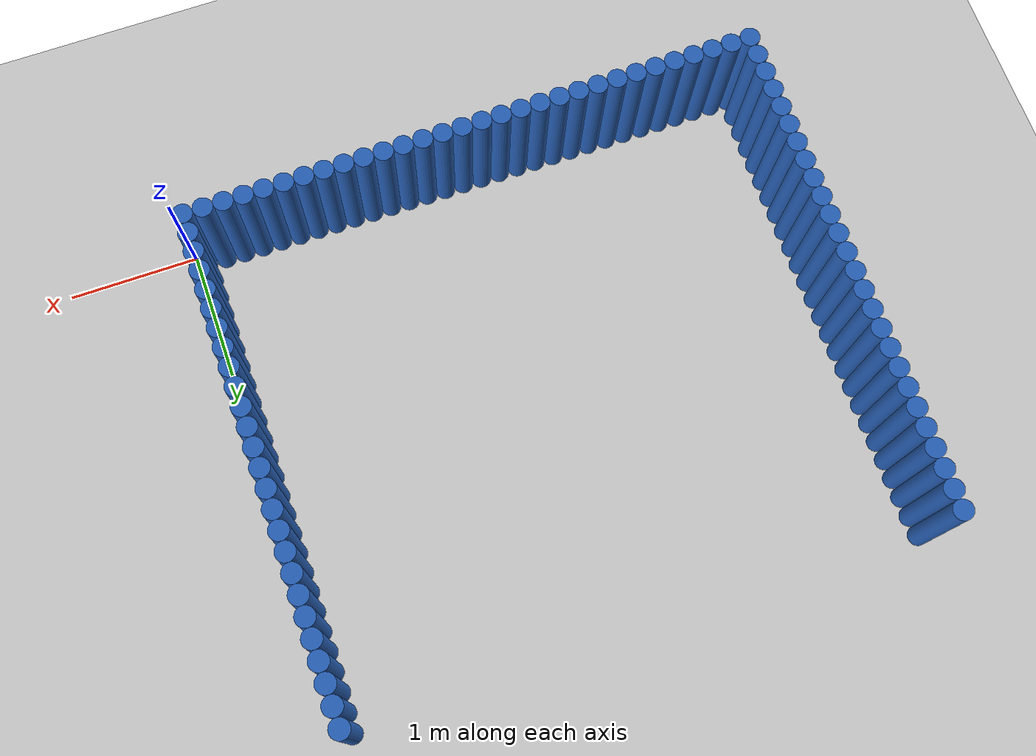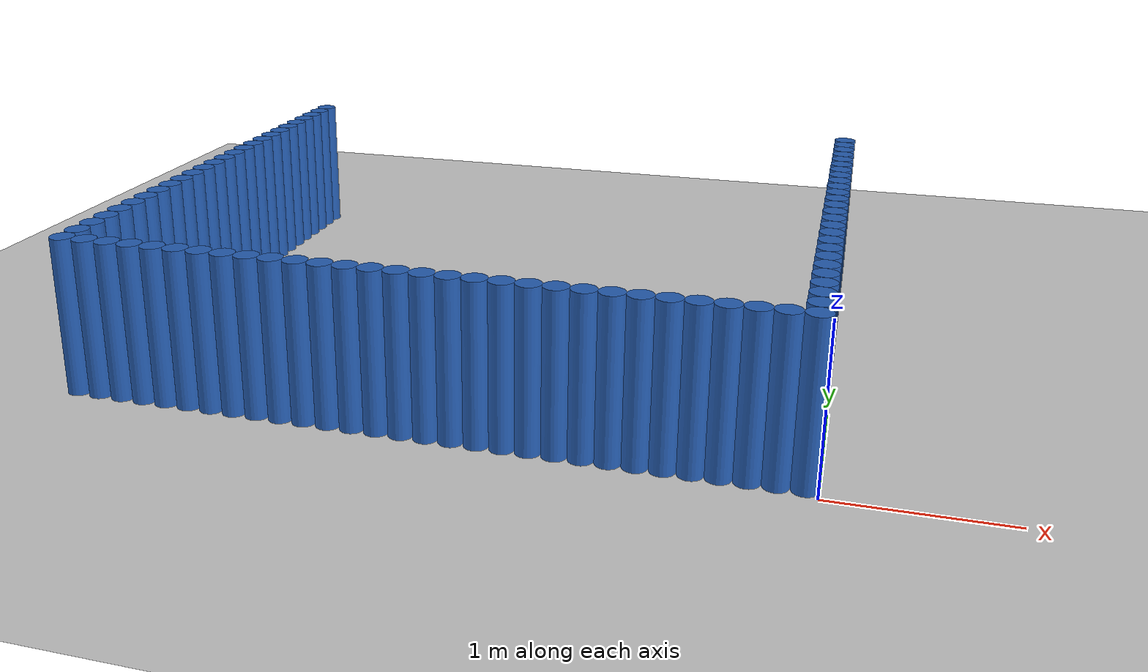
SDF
<sdf version="1.6">
 <world name="barn_world">
  <model name="ground_plane">
   <static>1</static>
   <link name="link">
    <collision name="collision">
     <geometry><plane><normal>0 0 1</normal><size>100 100</size></plane></geometry>
    </collision>
    <visual name="visual">
     <geometry><plane><normal>0 0 1</normal><size>100 100</size></plane></geometry>
     <material>
      <script><uri>file://media/materials/scripts/gazebo.material</uri><name>Gazebo/Grey</name></script>
     </material>
    </visual>
   </link>
  </model>
  <model name="unit_cylinder_0">
   <static>1</static>
   <pose>-0.0750 0.0750 0.5 0 0 0</pose>
   <link name="link">
    <collision name="collision">
     <geometry><cylinder><radius>0.075</radius><length>1</length></cylinder></geometry>
    </collision>
    <visual name="visual">
     <geometry><cylinder><radius>0.075</radius><length>1</length></cylinder></geometry>
     <material><ambient>0.152 0.379 0.72 1</ambient><diffuse>0.152 0.379 0.72 1</diffuse></material>
    </visual>
   </link>
  </model>
  <model name="unit_cylinder_1">
   <static>1</static>
   <pose>-0.2250 0.0750 0.5 0 0 0</pose>
   <link name="link">
    <collision name="collision">
     <geometry><cylinder><radius>0.075</radius><length>1</length></cylinder></geometry>
    </collision>
    <visual name="visual">
     <geometry><cylinder><radius>0.075</radius><length>1</length></cylinder></geometry>
     <material><ambient>0.152 0.379 0.72 1</ambient><diffuse>0.152 0.379 0.72 1</diffuse></material>
    </visual>
   </link>
  </model>
  <model name="unit_cylinder_2">
   <static>1</static>
   <pose>-0.3750 0.0750 0.5 0 0 0</pose>
   <link name="link">
    <collision name="collision">
     <geometry><cylinder><radius>0.075</radius><length>1</length></cylinder></geometry>
    </collision>
    <visual name="visual">
     <geometry><cylinder><radius>0.075</radius><length>1</length></cylinder></geometry>
     <material><ambient>0.152 0.379 0.72 1</ambient><diffuse>0.152 0.379 0.72 1</diffuse></material>
    </visual>
   </link>
  </model>
  <model name="unit_cylinder_3">
   <static>1</static>
   <pose>-0.5250 0.0750 0.5 0 0 0</pose>
   <link name="link">
    <collision name="collision">
     <geometry><cylinder><radius>0.075</radius><length>1</length></cylinder></geometry>
    </collision>
    <visual name="visual">
     <geometry><cylinder><radius>0.075</radius><length>1</length></cylinder></geometry>
     <material><ambient>0.152 0.379 0.72 1</ambient><diffuse>0.152 0.379 0.72 1</diffuse></material>
    </visual>
   </link>
  </model>
  <model name="unit_cylinder_4">
   <static>1</static>
   <pose>-0.6750 0.0750 0.5 0 0 0</pose>
   <link name="link">
    <collision name="collision">
     <geometry><cylinder><radius>0.075</radius><length>1</length></cylinder></geometry>
    </collision>
    <visual name="visual">
     <geometry><cylinder><radius>0.075</radius><length>1</length></cylinder></geometry>
     <material><ambient>0.152 0.379 0.72 1</ambient><diffuse>0.152 0.379 0.72 1</diffuse></material>
    </visual>
   </link>
  </model>
  <model name="unit_cylinder_5">
   <static>1</static>
   <pose>-0.8250 0.0750 0.5 0 0 0</pose>
   <link name="link">
    <collision name="collision">
     <geometry><cylinder><radius>0.075</radius><length>1</length></cylinder></geometry>
    </collision>
    <visual name="visual">
     <geometry><cylinder><radius>0.075</radius><length>1</length></cylinder></geometry>
     <material><ambient>0.152 0.379 0.72 1</ambient><diffuse>0.152 0.379 0.72 1</diffuse></material>
    </visual>
   </link>
  </model>
  <model name="unit_cylinder_6">
   <static>1</static>
   <pose>-0.9750 0.0750 0.5 0 0 0</pose>
   <link name="link">
    <collision name="collision">
     <geometry><cylinder><radius>0.075</radius><length>1</length></cylinder></geometry>
    </collision>
    <visual name="visual">
     <geometry><cylinder><radius>0.075</radius><length>1</length></cylinder></geometry>
     <material><ambient>0.152 0.379 0.72 1</ambient><diffuse>0.152 0.379 0.72 1</diffuse></material>
    </visual>
   </link>
  </model>
  <model name="unit_cylinder_7">
   <static>1</static>
   <pose>-1.1250 0.0750 0.5 0 0 0</pose>
   <link name="link">
    <collision name="collision">
     <geometry><cylinder><radius>0.075</radius><length>1</length></cylinder></geometry>
    </collision>
    <visual name="visual">
     <geometry><cylinder><radius>0.075</radius><length>1</length></cylinder></geometry>
     <material><ambient>0.152 0.379 0.72 1</ambient><diffuse>0.152 0.379 0.72 1</diffuse></material>
    </visual>
   </link>
  </model>
  <model name="unit_cylinder_8">
   <static>1</static>
   <pose>-1.2750 0.0750 0.5 0 0 0</pose>
   <link name="link">
    <collision name="collision">
     <geometry><cylinder><radius>0.075</radius><length>1</length></cylinder></geometry>
    </collision>
    <visual name="visual">
     <geometry><cylinder><radius>0.075</radius><length>1</length></cylinder></geometry>
     <material><ambient>0.152 0.379 0.72 1</ambient><diffuse>0.152 0.379 0.72 1</diffuse></material>
    </visual>
   </link>
  </model>
  <model name="unit_cylinder_9">
   <static>1</static>
   <pose>-1.4250 0.0750 0.5 0 0 0</pose>
   <link name="link">
    <collision name="collision">
     <geometry><cylinder><radius>0.075</radius><length>1</length></cylinder></geometry>
    </collision>
    <visual name="visual">
     <geometry><cylinder><radius>0.075</radius><length>1</length></cylinder></geometry>
     <material><ambient>0.152 0.379 0.72 1</ambient><diffuse>0.152 0.379 0.72 1</diffuse></material>
    </visual>
   </link>
  </model>
  <model name="unit_cylinder_10">
   <static>1</static>
   <pose>-1.5750 0.0750 0.5 0 0 0</pose>
   <link name="link">
    <collision name="collision">
     <geometry><cylinder><radius>0.075</radius><length>1</length></cylinder></geometry>
    </collision>
    <visual name="visual">
     <geometry><cylinder><radius>0.075</radius><length>1</length></cylinder></geometry>
     <material><ambient>0.152 0.379 0.72 1</ambient><diffuse>0.152 0.379 0.72 1</diffuse></material>
    </visual>
   </link>
  </model>
  <model name="unit_cylinder_11">
   <static>1</static>
   <pose>-1.7250 0.0750 0.5 0 0 0</pose>
   <link name="link">
    <collision name="collision">
     <geometry><cylinder><radius>0.075</radius><length>1</length></cylinder></geometry>
    </collision>
    <visual name="visual">
     <geometry><cylinder><radius>0.075</radius><length>1</length></cylinder></geometry>
     <material><ambient>0.152 0.379 0.72 1</ambient><diffuse>0.152 0.379 0.72 1</diffuse></material>
    </visual>
   </link>
  </model>
  <model name="unit_cylinder_12">
   <static>1</static>
   <pose>-1.8750 0.0750 0.5 0 0 0</pose>
   <link name="link">
    <collision name="collision">
     <geometry><cylinder><radius>0.075</radius><length>1</length></cylinder></geometry>
    </collision>
    <visual name="visual">
     <geometry><cylinder><radius>0.075</radius><length>1</length></cylinder></geometry>
     <material><ambient>0.152 0.379 0.72 1</ambient><diffuse>0.152 0.379 0.72 1</diffuse></material>
    </visual>
   </link>
  </model>
  <model name="unit_cylinder_13">
   <static>1</static>
   <pose>-2.0250 0.0750 0.5 0 0 0</pose>
   <link name="link">
    <collision name="collision">
     <geometry><cylinder><radius>0.075</radius><length>1</length></cylinder></geometry>
    </collision>
    <visual name="visual">
     <geometry><cylinder><radius>0.075</radius><length>1</length></cylinder></geometry>
     <material><ambient>0.152 0.379 0.72 1</ambient><diffuse>0.152 0.379 0.72 1</diffuse></material>
    </visual>
   </link>
  </model>
  <model name="unit_cylinder_14">
   <static>1</static>
   <pose>-2.1750 0.0750 0.5 0 0 0</pose>
   <link name="link">
    <collision name="collision">
     <geometry><cylinder><radius>0.075</radius><length>1</length></cylinder></geometry>
    </collision>
    <visual name="visual">
     <geometry><cylinder><radius>0.075</radius><length>1</length></cylinder></geometry>
     <material><ambient>0.152 0.379 0.72 1</ambient><diffuse>0.152 0.379 0.72 1</diffuse></material>
    </visual>
   </link>
  </model>
  <model name="unit_cylinder_15">
   <static>1</static>
   <pose>-2.3250 0.0750 0.5 0 0 0</pose>
   <link name="link">
    <collision name="collision">
     <geometry><cylinder><radius>0.075</radius><length>1</length></cylinder></geometry>
    </collision>
    <visual name="visual">
     <geometry><cylinder><radius>0.075</radius><length>1</length></cylinder></geometry>
     <material><ambient>0.152 0.379 0.72 1</ambient><diffuse>0.152 0.379 0.72 1</diffuse></material>
    </visual>
   </link>
  </model>
  <model name="unit_cylinder_16">
   <static>1</static>
   <pose>-2.4750 0.0750 0.5 0 0 0</pose>
   <link name="link">
    <collision name="collision">
     <geometry><cylinder><radius>0.075</radius><length>1</length></cylinder></geometry>
    </collision>
    <visual name="visual">
     <geometry><cylinder><radius>0.075</radius><length>1</length></cylinder></geometry>
     <material><ambient>0.152 0.379 0.72 1</ambient><diffuse>0.152 0.379 0.72 1</diffuse></material>
    </visual>
   </link>
  </model>
  <model name="unit_cylinder_17">
   <static>1</static>
   <pose>-2.6250 0.0750 0.5 0 0 0</pose>
   <link name="link">
    <collision name="collision">
     <geometry><cylinder><radius>0.075</radius><length>1</length></cylinder></geometry>
    </collision>
    <visual name="visual">
     <geometry><cylinder><radius>0.075</radius><length>1</length></cylinder></geometry>
     <material><ambient>0.152 0.379 0.72 1</ambient><diffuse>0.152 0.379 0.72 1</diffuse></material>
    </visual>
   </link>
  </model>
  <model name="unit_cylinder_18">
   <static>1</static>
   <pose>-2.7750 0.0750 0.5 0 0 0</pose>
   <link name="link">
    <collision name="collision">
     <geometry><cylinder><radius>0.075</radius><length>1</length></cylinder></geometry>
    </collision>
    <visual name="visual">
     <geometry><cylinder><radius>0.075</radius><length>1</length></cylinder></geometry>
     <material><ambient>0.152 0.379 0.72 1</ambient><diffuse>0.152 0.379 0.72 1</diffuse></material>
    </visual>
   </link>
  </model>
  <model name="unit_cylinder_19">
   <static>1</static>
   <pose>-2.9250 0.0750 0.5 0 0 0</pose>
   <link name="link">
    <collision name="collision">
     <geometry><cylinder><radius>0.075</radius><length>1</length></cylinder></geometry>
    </collision>
    <visual name="visual">
     <geometry><cylinder><radius>0.075</radius><length>1</length></cylinder></geometry>
     <material><ambient>0.152 0.379 0.72 1</ambient><diffuse>0.152 0.379 0.72 1</diffuse></material>
    </visual>
   </link>
  </model>
  <model name="unit_cylinder_20">
   <static>1</static>
   <pose>-3.0750 0.0750 0.5 0 0 0</pose>
   <link name="link">
    <collision name="collision">
     <geometry><cylinder><radius>0.075</radius><length>1</length></cylinder></geometry>
    </collision>
    <visual name="visual">
     <geometry><cylinder><radius>0.075</radius><length>1</length></cylinder></geometry>
     <material><ambient>0.152 0.379 0.72 1</ambient><diffuse>0.152 0.379 0.72 1</diffuse></material>
    </visual>
   </link>
  </model>
  <model name="unit_cylinder_21">
   <static>1</static>
   <pose>-3.2250 0.0750 0.5 0 0 0</pose>
   <link name="link">
    <collision name="collision">
     <geometry><cylinder><radius>0.075</radius><length>1</length></cylinder></geometry>
    </collision>
    <visual name="visual">
     <geometry><cylinder><radius>0.075</radius><length>1</length></cylinder></geometry>
     <material><ambient>0.152 0.379 0.72 1</ambient><diffuse>0.152 0.379 0.72 1</diffuse></material>
    </visual>
   </link>
  </model>
  <model name="unit_cylinder_22">
   <static>1</static>
   <pose>-3.3750 0.0750 0.5 0 0 0</pose>
   <link name="link">
    <collision name="collision">
     <geometry><cylinder><radius>0.075</radius><length>1</length></cylinder></geometry>
    </collision>
    <visual name="visual">
     <geometry><cylinder><radius>0.075</radius><length>1</length></cylinder></geometry>
     <material><ambient>0.152 0.379 0.72 1</ambient><diffuse>0.152 0.379 0.72 1</diffuse></material>
    </visual>
   </link>
  </model>
  <model name="unit_cylinder_23">
   <static>1</static>
   <pose>-3.5250 0.0750 0.5 0 0 0</pose>
   <link name="link">
    <collision name="collision">
     <geometry><cylinder><radius>0.075</radius><length>1</length></cylinder></geometry>
    </collision>
    <visual name="visual">
     <geometry><cylinder><radius>0.075</radius><length>1</length></cylinder></geometry>
     <material><ambient>0.152 0.379 0.72 1</ambient><diffuse>0.152 0.379 0.72 1</diffuse></material>
    </visual>
   </link>
  </model>
  <model name="unit_cylinder_24">
   <static>1</static>
   <pose>-3.6750 0.0750 0.5 0 0 0</pose>
   <link name="link">
    <collision name="collision">
     <geometry><cylinder><radius>0.075</radius><length>1</length></cylinder></geometry>
    </collision>
    <visual name="visual">
     <geometry><cylinder><radius>0.075</radius><length>1</length></cylinder></geometry>
     <material><ambient>0.152 0.379 0.72 1</ambient><diffuse>0.152 0.379 0.72 1</diffuse></material>
    </visual>
   </link>
  </model>
  <model name="unit_cylinder_25">
   <static>1</static>
   <pose>-3.8250 0.0750 0.5 0 0 0</pose>
   <link name="link">
    <collision name="collision">
     <geometry><cylinder><radius>0.075</radius><length>1</length></cylinder></geometry>
    </collision>
    <visual name="visual">
     <geometry><cylinder><radius>0.075</radius><length>1</length></cylinder></geometry>
     <material><ambient>0.152 0.379 0.72 1</ambient><diffuse>0.152 0.379 0.72 1</diffuse></material>
    </visual>
   </link>
  </model>
  <model name="unit_cylinder_26">
   <static>1</static>
   <pose>-3.9750 0.0750 0.5 0 0 0</pose>
   <link name="link">
    <collision name="collision">
     <geometry><cylinder><radius>0.075</radius><length>1</length></cylinder></geometry>
    </collision>
    <visual name="visual">
     <geometry><cylinder><radius>0.075</radius><length>1</length></cylinder></geometry>
     <material><ambient>0.152 0.379 0.72 1</ambient><diffuse>0.152 0.379 0.72 1</diffuse></material>
    </visual>
   </link>
  </model>
  <model name="unit_cylinder_27">
   <static>1</static>
   <pose>-4.1250 0.0750 0.5 0 0 0</pose>
   <link name="link">
    <collision name="collision">
     <geometry><cylinder><radius>0.075</radius><length>1</length></cylinder></geometry>
    </collision>
    <visual name="visual">
     <geometry><cylinder><radius>0.075</radius><length>1</length></cylinder></geometry>
     <material><ambient>0.152 0.379 0.72 1</ambient><diffuse>0.152 0.379 0.72 1</diffuse></material>
    </visual>
   </link>
  </model>
  <model name="unit_cylinder_28">
   <static>1</static>
   <pose>-4.2750 0.0750 0.5 0 0 0</pose>
   <link name="link">
    <collision name="collision">
     <geometry><cylinder><radius>0.075</radius><length>1</length></cylinder></geometry>
    </collision>
    <visual name="visual">
     <geometry><cylinder><radius>0.075</radius><length>1</length></cylinder></geometry>
     <material><ambient>0.152 0.379 0.72 1</ambient><diffuse>0.152 0.379 0.72 1</diffuse></material>
    </visual>
   </link>
  </model>
  <model name="unit_cylinder_29">
   <static>1</static>
   <pose>-4.4250 0.0750 0.5 0 0 0</pose>
   <link name="link">
    <collision name="collision">
     <geometry><cylinder><radius>0.075</radius><length>1</length></cylinder></geometry>
    </collision>
    <visual name="visual">
     <geometry><cylinder><radius>0.075</radius><length>1</length></cylinder></geometry>
     <material><ambient>0.152 0.379 0.72 1</ambient><diffuse>0.152 0.379 0.72 1</diffuse></material>
    </visual>
   </link>
  </model>
  <model name="unit_cylinder_30">
   <static>1</static>
   <pose>-0.0750 0.2250 0.5 0 0 0</pose>
   <link name="link">
    <collision name="collision">
     <geometry><cylinder><radius>0.075</radius><length>1</length></cylinder></geometry>
    </collision>
    <visual name="visual">
     <geometry><cylinder><radius>0.075</radius><length>1</length></cylinder></geometry>
     <material><ambient>0.152 0.379 0.72 1</ambient><diffuse>0.152 0.379 0.72 1</diffuse></material>
    </visual>
   </link>
  </model>
  <model name="unit_cylinder_31">
   <static>1</static>
   <pose>-4.4250 0.2250 0.5 0 0 0</pose>
   <link name="link">
    <collision name="collision">
     <geometry><cylinder><radius>0.075</radius><length>1</length></cylinder></geometry>
    </collision>
    <visual name="visual">
     <geometry><cylinder><radius>0.075</radius><length>1</length></cylinder></geometry>
     <material><ambient>0.152 0.379 0.72 1</ambient><diffuse>0.152 0.379 0.72 1</diffuse></material>
    </visual>
   </link>
  </model>
  <model name="unit_cylinder_32">
   <static>1</static>
   <pose>-0.0750 0.3750 0.5 0 0 0</pose>
   <link name="link">
    <collision name="collision">
     <geometry><cylinder><radius>0.075</radius><length>1</length></cylinder></geometry>
    </collision>
    <visual name="visual">
     <geometry><cylinder><radius>0.075</radius><length>1</length></cylinder></geometry>
     <material><ambient>0.152 0.379 0.72 1</ambient><diffuse>0.152 0.379 0.72 1</diffuse></material>
    </visual>
   </link>
  </model>
  <model name="unit_cylinder_33">
   <static>1</static>
   <pose>-4.4250 0.3750 0.5 0 0 0</pose>
   <link name="link">
    <collision name="collision">
     <geometry><cylinder><radius>0.075</radius><length>1</length></cylinder></geometry>
    </collision>
    <visual name="visual">
     <geometry><cylinder><radius>0.075</radius><length>1</length></cylinder></geometry>
     <material><ambient>0.152 0.379 0.72 1</ambient><diffuse>0.152 0.379 0.72 1</diffuse></material>
    </visual>
   </link>
  </model>
  <model name="unit_cylinder_34">
   <static>1</static>
   <pose>-0.0750 0.5250 0.5 0 0 0</pose>
   <link name="link">
    <collision name="collision">
     <geometry><cylinder><radius>0.075</radius><length>1</length></cylinder></geometry>
    </collision>
    <visual name="visual">
     <geometry><cylinder><radius>0.075</radius><length>1</length></cylinder></geometry>
     <material><ambient>0.152 0.379 0.72 1</ambient><diffuse>0.152 0.379 0.72 1</diffuse></material>
    </visual>
   </link>
  </model>
  <model name="unit_cylinder_35">
   <static>1</static>
   <pose>-4.4250 0.5250 0.5 0 0 0</pose>
   <link name="link">
    <collision name="collision">
     <geometry><cylinder><radius>0.075</radius><length>1</length></cylinder></geometry>
    </collision>
    <visual name="visual">
     <geometry><cylinder><radius>0.075</radius><length>1</length></cylinder></geometry>
     <material><ambient>0.152 0.379 0.72 1</ambient><diffuse>0.152 0.379 0.72 1</diffuse></material>
    </visual>
   </link>
  </model>
  <model name="unit_cylinder_36">
   <static>1</static>
   <pose>-0.0750 0.6750 0.5 0 0 0</pose>
   <link name="link">
    <collision name="collision">
     <geometry><cylinder><radius>0.075</radius><length>1</length></cylinder></geometry>
    </collision>
    <visual name="visual">
     <geometry><cylinder><radius>0.075</radius><length>1</length></cylinder></geometry>
     <material><ambient>0.152 0.379 0.72 1</ambient><diffuse>0.152 0.379 0.72 1</diffuse></material>
    </visual>
   </link>
  </model>
  <model name="unit_cylinder_37">
   <static>1</static>
   <pose>-4.4250 0.6750 0.5 0 0 0</pose>
   <link name="link">
    <collision name="collision">
     <geometry><cylinder><radius>0.075</radius><length>1</length></cylinder></geometry>
    </collision>
    <visual name="visual">
     <geometry><cylinder><radius>0.075</radius><length>1</length></cylinder></geometry>
     <material><ambient>0.152 0.379 0.72 1</ambient><diffuse>0.152 0.379 0.72 1</diffuse></material>
    </visual>
   </link>
  </model>
  <model name="unit_cylinder_38">
   <static>1</static>
   <pose>-0.0750 0.8250 0.5 0 0 0</pose>
   <link name="link">
    <collision name="collision">
     <geometry><cylinder><radius>0.075</radius><length>1</length></cylinder></geometry>
    </collision>
    <visual name="visual">
     <geometry><cylinder><radius>0.075</radius><length>1</length></cylinder></geometry>
     <material><ambient>0.152 0.379 0.72 1</ambient><diffuse>0.152 0.379 0.72 1</diffuse></material>
    </visual>
   </link>
  </model>
  <model name="unit_cylinder_39">
   <static>1</static>
   <pose>-4.4250 0.8250 0.5 0 0 0</pose>
   <link name="link">
    <collision name="collision">
     <geometry><cylinder><radius>0.075</radius><length>1</length></cylinder></geometry>
    </collision>
    <visual name="visual">
     <geometry><cylinder><radius>0.075</radius><length>1</length></cylinder></geometry>
     <material><ambient>0.152 0.379 0.72 1</ambient><diffuse>0.152 0.379 0.72 1</diffuse></material>
    </visual>
   </link>
  </model>
  <model name="unit_cylinder_40">
   <static>1</static>
   <pose>-0.0750 0.9750 0.5 0 0 0</pose>
   <link name="link">
    <collision name="collision">
     <geometry><cylinder><radius>0.075</radius><length>1</length></cylinder></geometry>
    </collision>
    <visual name="visual">
     <geometry><cylinder><radius>0.075</radius><length>1</length></cylinder></geometry>
     <material><ambient>0.152 0.379 0.72 1</ambient><diffuse>0.152 0.379 0.72 1</diffuse></material>
    </visual>
   </link>
  </model>
  <model name="unit_cylinder_41">
   <static>1</static>
   <pose>-4.4250 0.9750 0.5 0 0 0</pose>
   <link name="link">
    <collision name="collision">
     <geometry><cylinder><radius>0.075</radius><length>1</length></cylinder></geometry>
    </collision>
    <visual name="visual">
     <geometry><cylinder><radius>0.075</radius><length>1</length></cylinder></geometry>
     <material><ambient>0.152 0.379 0.72 1</ambient><diffuse>0.152 0.379 0.72 1</diffuse></material>
    </visual>
   </link>
  </model>
  <model name="unit_cylinder_42">
   <static>1</static>
   <pose>-0.0750 1.1250 0.5 0 0 0</pose>
   <link name="link">
    <collision name="collision">
     <geometry><cylinder><radius>0.075</radius><length>1</length></cylinder></geometry>
    </collision>
    <visual name="visual">
     <geometry><cylinder><radius>0.075</radius><length>1</length></cylinder></geometry>
     <material><ambient>0.152 0.379 0.72 1</ambient><diffuse>0.152 0.379 0.72 1</diffuse></material>
    </visual>
   </link>
  </model>
  <model name="unit_cylinder_43">
   <static>1</static>
   <pose>-4.4250 1.1250 0.5 0 0 0</pose>
   <link name="link">
    <collision name="collision">
     <geometry><cylinder><radius>0.075</radius><length>1</length></cylinder></geometry>
    </collision>
    <visual name="visual">
     <geometry><cylinder><radius>0.075</radius><length>1</length></cylinder></geometry>
     <material><ambient>0.152 0.379 0.72 1</ambient><diffuse>0.152 0.379 0.72 1</diffuse></material>
    </visual>
   </link>
  </model>
  <model name="unit_cylinder_44">
   <static>1</static>
   <pose>-0.0750 1.2750 0.5 0 0 0</pose>
   <link name="link">
    <collision name="collision">
     <geometry><cylinder><radius>0.075</radius><length>1</length></cylinder></geometry>
    </collision>
    <visual name="visual">
     <geometry><cylinder><radius>0.075</radius><length>1</length></cylinder></geometry>
     <material><ambient>0.152 0.379 0.72 1</ambient><diffuse>0.152 0.379 0.72 1</diffuse></material>
    </visual>
   </link>
  </model>
  <model name="unit_cylinder_45">
   <static>1</static>
   <pose>-4.4250 1.2750 0.5 0 0 0</pose>
   <link name="link">
    <collision name="collision">
     <geometry><cylinder><radius>0.075</radius><length>1</length></cylinder></geometry>
    </collision>
    <visual name="visual">
     <geometry><cylinder><radius>0.075</radius><length>1</length></cylinder></geometry>
     <material><ambient>0.152 0.379 0.72 1</ambient><diffuse>0.152 0.379 0.72 1</diffuse></material>
    </visual>
   </link>
  </model>
  <model name="unit_cylinder_46">
   <static>1</static>
   <pose>-0.0750 1.4250 0.5 0 0 0</pose>
   <link name="link">
    <collision name="collision">
     <geometry><cylinder><radius>0.075</radius><length>1</length></cylinder></geometry>
    </collision>
    <visual name="visual">
     <geometry><cylinder><radius>0.075</radius><length>1</length></cylinder></geometry>
     <material><ambient>0.152 0.379 0.72 1</ambient><diffuse>0.152 0.379 0.72 1</diffuse></material>
    </visual>
   </link>
  </model>
  <model name="unit_cylinder_47">
   <static>1</static>
   <pose>-4.4250 1.4250 0.5 0 0 0</pose>
   <link name="link">
    <collision name="collision">
     <geometry><cylinder><radius>0.075</radius><length>1</length></cylinder></geometry>
    </collision>
    <visual name="visual">
     <geometry><cylinder><radius>0.075</radius><length>1</length></cylinder></geometry>
     <material><ambient>0.152 0.379 0.72 1</ambient><diffuse>0.152 0.379 0.72 1</diffuse></material>
    </visual>
   </link>
  </model>
  <model name="unit_cylinder_48">
   <static>1</static>
   <pose>-0.0750 1.5750 0.5 0 0 0</pose>
   <link name="link">
    <collision name="collision">
     <geometry><cylinder><radius>0.075</radius><length>1</length></cylinder></geometry>
    </collision>
    <visual name="visual">
     <geometry><cylinder><radius>0.075</radius><length>1</length></cylinder></geometry>
     <material><ambient>0.152 0.379 0.72 1</ambient><diffuse>0.152 0.379 0.72 1</diffuse></material>
    </visual>
   </link>
  </model>
  <model name="unit_cylinder_49">
   <static>1</static>
   <pose>-4.4250 1.5750 0.5 0 0 0</pose>
   <link name="link">
    <collision name="collision">
     <geometry><cylinder><radius>0.075</radius><length>1</length></cylinder></geometry>
    </collision>
    <visual name="visual">
     <geometry><cylinder><radius>0.075</radius><length>1</length></cylinder></geometry>
     <material><ambient>0.152 0.379 0.72 1</ambient><diffuse>0.152 0.379 0.72 1</diffuse></material>
    </visual>
   </link>
  </model>
  <model name="unit_cylinder_50">
   <static>1</static>
   <pose>-0.0750 1.7250 0.5 0 0 0</pose>
   <link name="link">
    <collision name="collision">
     <geometry><cylinder><radius>0.075</radius><length>1</length></cylinder></geometry>
    </collision>
    <visual name="visual">
     <geometry><cylinder><radius>0.075</radius><length>1</length></cylinder></geometry>
     <material><ambient>0.152 0.379 0.72 1</ambient><diffuse>0.152 0.379 0.72 1</diffuse></material>
    </visual>
   </link>
  </model>
  <model name="unit_cylinder_51">
   <static>1</static>
   <pose>-4.4250 1.7250 0.5 0 0 0</pose>
   <link name="link">
    <collision name="collision">
     <geometry><cylinder><radius>0.075</radius><length>1</length></cylinder></geometry>
    </collision>
    <visual name="visual">
     <geometry><cylinder><radius>0.075</radius><length>1</length></cylinder></geometry>
     <material><ambient>0.152 0.379 0.72 1</ambient><diffuse>0.152 0.379 0.72 1</diffuse></material>
    </visual>
   </link>
  </model>
  <model name="unit_cylinder_52">
   <static>1</static>
   <pose>-0.0750 1.8750 0.5 0 0 0</pose>
   <link name="link">
    <collision name="collision">
     <geometry><cylinder><radius>0.075</radius><length>1</length></cylinder></geometry>
    </collision>
    <visual name="visual">
     <geometry><cylinder><radius>0.075</radius><length>1</length></cylinder></geometry>
     <material><ambient>0.152 0.379 0.72 1</ambient><diffuse>0.152 0.379 0.72 1</diffuse></material>
    </visual>
   </link>
  </model>
  <model name="unit_cylinder_53">
   <static>1</static>
   <pose>-4.4250 1.8750 0.5 0 0 0</pose>
   <link name="link">
    <collision name="collision">
     <geometry><cylinder><radius>0.075</radius><length>1</length></cylinder></geometry>
    </collision>
    <visual name="visual">
     <geometry><cylinder><radius>0.075</radius><length>1</length></cylinder></geometry>
     <material><ambient>0.152 0.379 0.72 1</ambient><diffuse>0.152 0.379 0.72 1</diffuse></material>
    </visual>
   </link>
  </model>
  <model name="unit_cylinder_54">
   <static>1</static>
   <pose>-0.0750 2.0250 0.5 0 0 0</pose>
   <link name="link">
    <collision name="collision">
     <geometry><cylinder><radius>0.075</radius><length>1</length></cylinder></geometry>
    </collision>
    <visual name="visual">
     <geometry><cylinder><radius>0.075</radius><length>1</length></cylinder></geometry>
     <material><ambient>0.152 0.379 0.72 1</ambient><diffuse>0.152 0.379 0.72 1</diffuse></material>
    </visual>
   </link>
  </model>
  <model name="unit_cylinder_55">
   <static>1</static>
   <pose>-4.4250 2.0250 0.5 0 0 0</pose>
   <link name="link">
    <collision name="collision">
     <geometry><cylinder><radius>0.075</radius><length>1</length></cylinder></geometry>
    </collision>
    <visual name="visual">
     <geometry><cylinder><radius>0.075</radius><length>1</length></cylinder></geometry>
     <material><ambient>0.152 0.379 0.72 1</ambient><diffuse>0.152 0.379 0.72 1</diffuse></material>
    </visual>
   </link>
  </model>
  <model name="unit_cylinder_56">
   <static>1</static>
   <pose>-0.0750 2.1750 0.5 0 0 0</pose>
   <link name="link">
    <collision name="collision">
     <geometry><cylinder><radius>0.075</radius><length>1</length></cylinder></geometry>
    </collision>
    <visual name="visual">
     <geometry><cylinder><radius>0.075</radius><length>1</length></cylinder></geometry>
     <material><ambient>0.152 0.379 0.72 1</ambient><diffuse>0.152 0.379 0.72 1</diffuse></material>
    </visual>
   </link>
  </model>
  <model name="unit_cylinder_57">
   <static>1</static>
   <pose>-4.4250 2.1750 0.5 0 0 0</pose>
   <link name="link">
    <collision name="collision">
     <geometry><cylinder><radius>0.075</radius><length>1</length></cylinder></geometry>
    </collision>
    <visual name="visual">
     <geometry><cylinder><radius>0.075</radius><length>1</length></cylinder></geometry>
     <material><ambient>0.152 0.379 0.72 1</ambient><diffuse>0.152 0.379 0.72 1</diffuse></material>
    </visual>
   </link>
  </model>
  <model name="unit_cylinder_58">
   <static>1</static>
   <pose>-0.0750 2.3250 0.5 0 0 0</pose>
   <link name="link">
    <collision name="collision">
     <geometry><cylinder><radius>0.075</radius><length>1</length></cylinder></geometry>
    </collision>
    <visual name="visual">
     <geometry><cylinder><radius>0.075</radius><length>1</length></cylinder></geometry>
     <material><ambient>0.152 0.379 0.72 1</ambient><diffuse>0.152 0.379 0.72 1</diffuse></material>
    </visual>
   </link>
  </model>
  <model name="unit_cylinder_59">
   <static>1</static>
   <pose>-4.4250 2.3250 0.5 0 0 0</pose>
   <link name="link">
    <collision name="collision">
     <geometry><cylinder><radius>0.075</radius><length>1</length></cylinder></geometry>
    </collision>
    <visual name="visual">
     <geometry><cylinder><radius>0.075</radius><length>1</length></cylinder></geometry>
     <material><ambient>0.152 0.379 0.72 1</ambient><diffuse>0.152 0.379 0.72 1</diffuse></material>
    </visual>
   </link>
  </model>
  <model name="unit_cylinder_60">
   <static>1</static>
   <pose>-0.0750 2.4750 0.5 0 0 0</pose>
   <link name="link">
    <collision name="collision">
     <geometry><cylinder><radius>0.075</radius><length>1</length></cylinder></geometry>
    </collision>
    <visual name="visual">
     <geometry><cylinder><radius>0.075</radius><length>1</length></cylinder></geometry>
     <material><ambient>0.152 0.379 0.72 1</ambient><diffuse>0.152 0.379 0.72 1</diffuse></material>
    </visual>
   </link>
  </model>
  <model name="unit_cylinder_61">
   <static>1</static>
   <pose>-4.4250 2.4750 0.5 0 0 0</pose>
   <link name="link">
    <collision name="collision">
     <geometry><cylinder><radius>0.075</radius><length>1</length></cylinder></geometry>
    </collision>
    <visual name="visual">
     <geometry><cylinder><radius>0.075</radius><length>1</length></cylinder></geometry>
     <material><ambient>0.152 0.379 0.72 1</ambient><diffuse>0.152 0.379 0.72 1</diffuse></material>
    </visual>
   </link>
  </model>
  <model name="unit_cylinder_62">
   <static>1</static>
   <pose>-0.0750 2.6250 0.5 0 0 0</pose>
   <link name="link">
    <collision name="collision">
     <geometry><cylinder><radius>0.075</radius><length>1</length></cylinder></geometry>
    </collision>
    <visual name="visual">
     <geometry><cylinder><radius>0.075</radius><length>1</length></cylinder></geometry>
     <material><ambient>0.152 0.379 0.72 1</ambient><diffuse>0.152 0.379 0.72 1</diffuse></material>
    </visual>
   </link>
  </model>
  <model name="unit_cylinder_63">
   <static>1</static>
   <pose>-4.4250 2.6250 0.5 0 0 0</pose>
   <link name="link">
    <collision name="collision">
     <geometry><cylinder><radius>0.075</radius><length>1</length></cylinder></geometry>
    </collision>
    <visual name="visual">
     <geometry><cylinder><radius>0.075</radius><length>1</length></cylinder></geometry>
     <material><ambient>0.152 0.379 0.72 1</ambient><diffuse>0.152 0.379 0.72 1</diffuse></material>
    </visual>
   </link>
  </model>
  <model name="unit_cylinder_64">
   <static>1</static>
   <pose>-0.0750 2.7750 0.5 0 0 0</pose>
   <link name="link">
    <collision name="collision">
     <geometry><cylinder><radius>0.075</radius><length>1</length></cylinder></geometry>
    </collision>
    <visual name="visual">
     <geometry><cylinder><radius>0.075</radius><length>1</length></cylinder></geometry>
     <material><ambient>0.152 0.379 0.72 1</ambient><diffuse>0.152 0.379 0.72 1</diffuse></material>
    </visual>
   </link>
  </model>
  <model name="unit_cylinder_65">
   <static>1</static>
   <pose>-4.4250 2.7750 0.5 0 0 0</pose>
   <link name="link">
    <collision name="collision">
     <geometry><cylinder><radius>0.075</radius><length>1</length></cylinder></geometry>
    </collision>
    <visual name="visual">
     <geometry><cylinder><radius>0.075</radius><length>1</length></cylinder></geometry>
     <material><ambient>0.152 0.379 0.72 1</ambient><diffuse>0.152 0.379 0.72 1</diffuse></material>
    </visual>
   </link>
  </model>
  <model name="unit_cylinder_66">
   <static>1</static>
   <pose>-0.0750 2.9250 0.5 0 0 0</pose>
   <link name="link">
    <collision name="collision">
     <geometry><cylinder><radius>0.075</radius><length>1</length></cylinder></geometry>
    </collision>
    <visual name="visual">
     <geometry><cylinder><radius>0.075</radius><length>1</length></cylinder></geometry>
     <material><ambient>0.152 0.379 0.72 1</ambient><diffuse>0.152 0.379 0.72 1</diffuse></material>
    </visual>
   </link>
  </model>
  <model name="unit_cylinder_67">
   <static>1</static>
   <pose>-4.4250 2.9250 0.5 0 0 0</pose>
   <link name="link">
    <collision name="collision">
     <geometry><cylinder><radius>0.075</radius><length>1</length></cylinder></geometry>
    </collision>
    <visual name="visual">
     <geometry><cylinder><radius>0.075</radius><length>1</length></cylinder></geometry>
     <material><ambient>0.152 0.379 0.72 1</ambient><diffuse>0.152 0.379 0.72 1</diffuse></material>
    </visual>
   </link>
  </model>
  <model name="unit_cylinder_68">
   <static>1</static>
   <pose>-0.0750 3.0750 0.5 0 0 0</pose>
   <link name="link">
    <collision name="collision">
     <geometry><cylinder><radius>0.075</radius><length>1</length></cylinder></geometry>
    </collision>
    <visual name="visual">
     <geometry><cylinder><radius>0.075</radius><length>1</length></cylinder></geometry>
     <material><ambient>0.152 0.379 0.72 1</ambient><diffuse>0.152 0.379 0.72 1</diffuse></material>
    </visual>
   </link>
  </model>
  <model name="unit_cylinder_69">
   <static>1</static>
   <pose>-4.4250 3.0750 0.5 0 0 0</pose>
   <link name="link">
    <collision name="collision">
     <geometry><cylinder><radius>0.075</radius><length>1</length></cylinder></geometry>
    </collision>
    <visual name="visual">
     <geometry><cylinder><radius>0.075</radius><length>1</length></cylinder></geometry>
     <material><ambient>0.152 0.379 0.72 1</ambient><diffuse>0.152 0.379 0.72 1</diffuse></material>
    </visual>
   </link>
  </model>
  <model name="unit_cylinder_70">
   <static>1</static>
   <pose>-0.0750 3.2250 0.5 0 0 0</pose>
   <link name="link">
    <collision name="collision">
     <geometry><cylinder><radius>0.075</radius><length>1</length></cylinder></geometry>
    </collision>
    <visual name="visual">
     <geometry><cylinder><radius>0.075</radius><length>1</length></cylinder></geometry>
     <material><ambient>0.152 0.379 0.72 1</ambient><diffuse>0.152 0.379 0.72 1</diffuse></material>
    </visual>
   </link>
  </model>
  <model name="unit_cylinder_71">
   <static>1</static>
   <pose>-4.4250 3.2250 0.5 0 0 0</pose>
   <link name="link">
    <collision name="collision">
     <geometry><cylinder><radius>0.075</radius><length>1</length></cylinder></geometry>
    </collision>
    <visual name="visual">
     <geometry><cylinder><radius>0.075</radius><length>1</length></cylinder></geometry>
     <material><ambient>0.152 0.379 0.72 1</ambient><diffuse>0.152 0.379 0.72 1</diffuse></material>
    </visual>
   </link>
  </model>
  <model name="unit_cylinder_72">
   <static>1</static>
   <pose>-0.0750 3.3750 0.5 0 0 0</pose>
   <link name="link">
    <collision name="collision">
     <geometry><cylinder><radius>0.075</radius><length>1</length></cylinder></geometry>
    </collision>
    <visual name="visual">
     <geometry><cylinder><radius>0.075</radius><length>1</length></cylinder></geometry>
     <material><ambient>0.152 0.379 0.72 1</ambient><diffuse>0.152 0.379 0.72 1</diffuse></material>
    </visual>
   </link>
  </model>
  <model name="unit_cylinder_73">
   <static>1</static>
   <pose>-4.4250 3.3750 0.5 0 0 0</pose>
   <link name="link">
    <collision name="collision">
     <geometry><cylinder><radius>0.075</radius><length>1</length></cylinder></geometry>
    </collision>
    <visual name="visual">
     <geometry><cylinder><radius>0.075</radius><length>1</length></cylinder></geometry>
     <material><ambient>0.152 0.379 0.72 1</ambient><diffuse>0.152 0.379 0.72 1</diffuse></material>
    </visual>
   </link>
  </model>
  <model name="unit_cylinder_74">
   <static>1</static>
   <pose>-0.0750 3.5250 0.5 0 0 0</pose>
   <link name="link">
    <collision name="collision">
     <geometry><cylinder><radius>0.075</radius><length>1</length></cylinder></geometry>
    </collision>
    <visual name="visual">
     <geometry><cylinder><radius>0.075</radius><length>1</length></cylinder></geometry>
     <material><ambient>0.152 0.379 0.72 1</ambient><diffuse>0.152 0.379 0.72 1</diffuse></material>
    </visual>
   </link>
  </model>
  <model name="unit_cylinder_75">
   <static>1</static>
   <pose>-4.4250 3.5250 0.5 0 0 0</pose>
   <link name="link">
    <collision name="collision">
     <geometry><cylinder><radius>0.075</radius><length>1</length></cylinder></geometry>
    </collision>
    <visual name="visual">
     <geometry><cylinder><radius>0.075</radius><length>1</length></cylinder></geometry>
     <material><ambient>0.152 0.379 0.72 1</ambient><diffuse>0.152 0.379 0.72 1</diffuse></material>
    </visual>
   </link>
  </model>
  <model name="unit_cylinder_76">
   <static>1</static>
   <pose>-0.0750 3.6750 0.5 0 0 0</pose>
   <link name="link">
    <collision name="collision">
     <geometry><cylinder><radius>0.075</radius><length>1</length></cylinder></geometry>
    </collision>
    <visual name="visual">
     <geometry><cylinder><radius>0.075</radius><length>1</length></cylinder></geometry>
     <material><ambient>0.152 0.379 0.72 1</ambient><diffuse>0.152 0.379 0.72 1</diffuse></material>
    </visual>
   </link>
  </model>
  <model name="unit_cylinder_77">
   <static>1</static>
   <pose>-4.4250 3.6750 0.5 0 0 0</pose>
   <link name="link">
    <collision name="collision">
     <geometry><cylinder><radius>0.075</radius><length>1</length></cylinder></geometry>
    </collision>
    <visual name="visual">
     <geometry><cylinder><radius>0.075</radius><length>1</length></cylinder></geometry>
     <material><ambient>0.152 0.379 0.72 1</ambient><diffuse>0.152 0.379 0.72 1</diffuse></material>
    </visual>
   </link>
  </model>
  <model name="unit_cylinder_78">
   <static>1</static>
   <pose>-0.0750 3.8250 0.5 0 0 0</pose>
   <link name="link">
    <collision name="collision">
     <geometry><cylinder><radius>0.075</radius><length>1</length></cylinder></geometry>
    </collision>
    <visual name="visual">
     <geometry><cylinder><radius>0.075</radius><length>1</length></cylinder></geometry>
     <material><ambient>0.152 0.379 0.72 1</ambient><diffuse>0.152 0.379 0.72 1</diffuse></material>
    </visual>
   </link>
  </model>
  <model name="unit_cylinder_79">
   <static>1</static>
   <pose>-4.4250 3.8250 0.5 0 0 0</pose>
   <link name="link">
    <collision name="collision">
     <geometry><cylinder><radius>0.075</radius><length>1</length></cylinder></geometry>
    </collision>
    <visual name="visual">
     <geometry><cylinder><radius>0.075</radius><length>1</length></cylinder></geometry>
     <material><ambient>0.152 0.379 0.72 1</ambient><diffuse>0.152 0.379 0.72 1</diffuse></material>
    </visual>
   </link>
  </model>
 </world>
</sdf>
